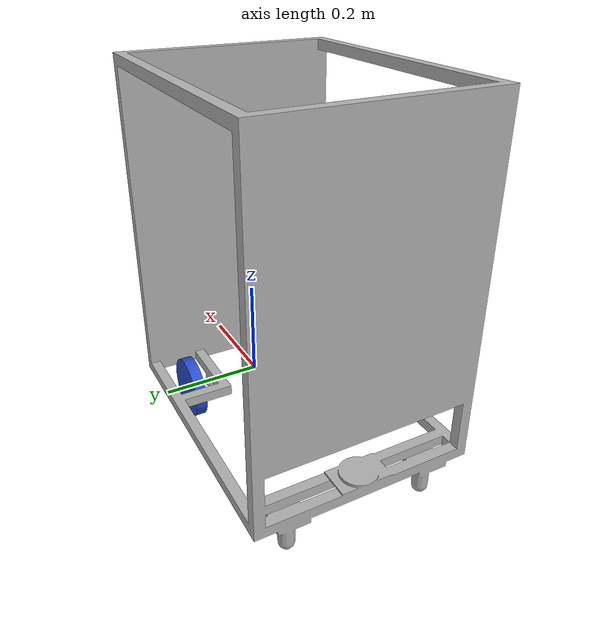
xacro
<?xml version="1.0"?>
<robot xmlns:xacro="htpp://www.ros.org/wiki/xacro">

    <xacro:include filename="inertial_macros.xacro"/>
    <material name="silver">
        <color rgba="0.700 0.700 0.700 1.000"/>
    </material>

    <material name="orange">
        <color rgba="1.000 0.300 0.100 1.000"/>
    </material>

    <material name="blue">
        <color rgba="0.200 0.200 1.000 1.000"/>
    </material>

    <material name="black">
        <color rgba="0.000 0.000 0.000 1.000"/>
    </material>

    <material name="yellow">
        <color rgba="1.000 0.600 0.000 1.000"/>
    </material>

    <!-- BASE LINK -->
    <link name="base_link">

    </link>

    <!-- CHASSIS LINK -->
    <joint name="chassis_joint" type="fixed">
        <parent link="base_link"/>
        <child link="chassis"/>
        <origin xyz="-0.452 0 0"/>
    </joint>

    <link name="chassis">
        <visual>
            <origin xyz="0.272 0 0.016"/>
            <geometry>
                <mesh filename="file://$(find my_diff_drive_bot)/meshes/chassis_link.stl" scale="0.001 0.001 0.001"/>
            </geometry>
            <material name="silver"/>
        </visual>

        <collision>
            <origin xyz="0.272 0 0.016"/>
            <geometry>
                <mesh filename="file://$(find my_diff_drive_bot)/meshes/chassis_link.stl" scale="0.001 0.001 0.001"/>
            </geometry>
            <material name="silver"/>
        </collision>

        <xacro:inertial_box mass="10.0" x="0.544" y="0.422" z="0.656">
            <origin xyz="0.272 0 0.328" rpy="0 0 0"/>
        </xacro:inertial_box>
    </link>

    <gazebo reference="chassis">
        <material>Gazebo/Yellow</material>
        <mu3 value="0.001"/>

    </gazebo>

    <!-- LEFT WHEEL LINK -->
    <joint name="left_wheel_joint" type="continuous">
        <parent link="base_link"/>
        <child link="left_wheel"/>
        <origin xyz="0 0.148 0" rpy="-${pi/2} 0 0"/>
        <axis xyz="0 0 1"/>
    </joint>

    <link name="left_wheel">
        <visual>
            <geometry>
                <cylinder radius="0.0625" length="0.023"/>
            </geometry>
            <materaial name="black"/>
        </visual>

        <collision>
            <geometry>
                <cylinder radius="0.0625" length="0.023"/>
            </geometry>
            <materaial name="black"/>
        </collision>

        <xacro:inertial_cylinder mass="0.15" length="0.023" radius="0.0625">
            <origin xyz="0 0 0" rpy="0 0 0"/>
        </xacro:inertial_cylinder>

    </link>

    <gazebo reference="left_wheel">
        <material>Gazebo/Blue</material>
    </gazebo>

    <!-- RIGHT WHEEL LINK -->
    <joint name="right_wheel_joint" type="continuous">
        <parent link="base_link"/>
        <child link="right_wheel"/>
        <origin xyz="0 -0.148 0" rpy="${pi/2} 0 0"/>
        <axis xyz="0 0 -1"/>
    </joint>

    <link name="right_wheel">
        <visual>
            <geometry>
                <cylinder radius="0.0625" length="0.023"/>
            </geometry>
            <materaial name="black"/>
        </visual>

        <collision>
            <geometry>
                <cylinder radius="0.0625" length="0.023"/>
            </geometry>
            <materaial name="black"/>
        </collision>

        <xacro:inertial_cylinder mass="0.15" length="0.023" radius="0.0625">
            <origin xyz="0 0 0" rpy="0 0 0"/>
        </xacro:inertial_cylinder>
    </link>

    <gazebo reference="right_wheel">
        <material>Gazebo/Blue</material>
    </gazebo>

</robot>
